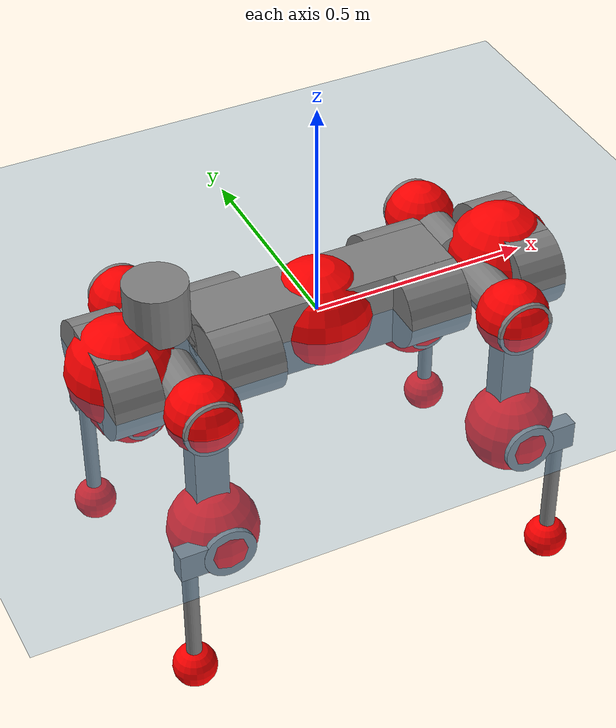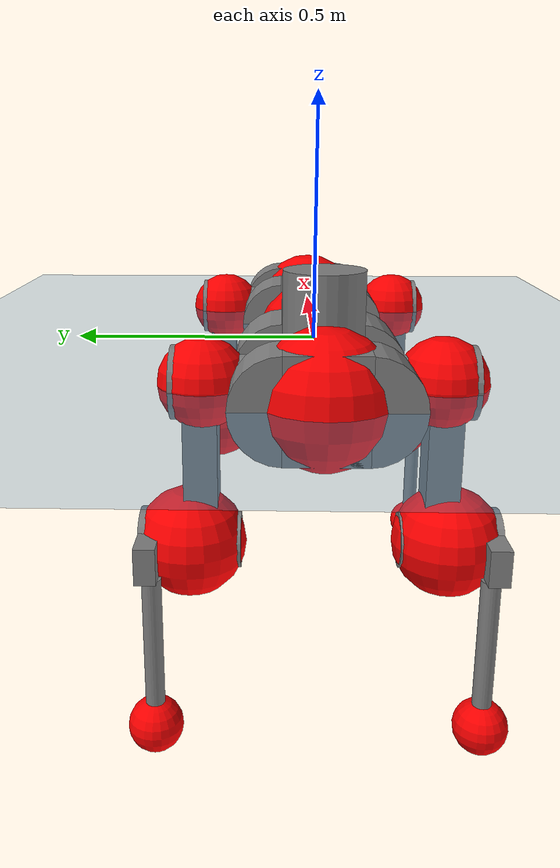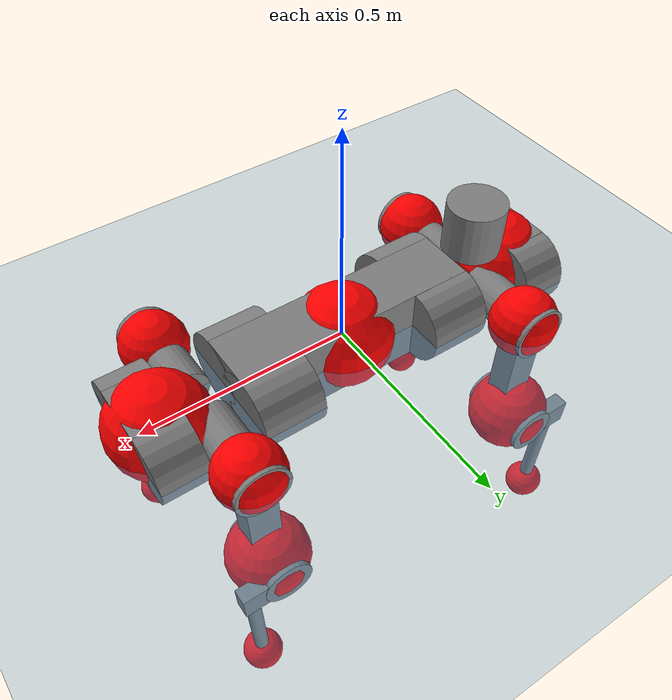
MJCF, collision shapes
<mujoco model="anymal_c">
  <compiler angle="radian" assetdir="assets" balanceinertia="true" inertiafromgeom="false"/>

  <option timestep="0.005" density="1.2" viscosity="2e-05"/>

  <size nkey="1"/>

  <visual>
    <quality shadowsize="8192"/>
    <map shadowclip="0.5"/>
  </visual>

  <default>
    <default class="/">
      <material specular="0" shininess="0.25"/>
      <geom contype="0" conaffinity="0" group="1" solref="-1000 -80"/>
      <site size="0.01 0.005 0.005" group="5"/>
      <general forcelimited="true" forcerange="-80 80" biastype="affine" gainprm="80" biasprm="0 -80 -2"/>
      <default class="anymal_c">
        <joint armature="0.01" damping="0.01" frictionloss="0.1"/>
        <default class="visual">
          <geom type="mesh" group="2"/>
          <default class="visual_zflip"/>
        </default>
        <default class="collision">
          <geom type="cylinder" group="3"/>
          <default class="foot">
            <geom size="0.03 0 0" type="sphere" condim="6" priority="1" friction="0.8 0.02 0.01" solimp="0.015 1 0.03"/>
          </default>
        </default>
      </default>
      <default class="reward_collision_sphere">
        <geom group="5" rgba="1 0 0 1"/>
      </default>
    </default>
  </default>

  <asset>
    <texture type="skybox" colorspace="auto" name="//unnamed_texture_0" builtin="gradient" rgb1="0.95 0.95 0.95" rgb2="0.95 0.95 0.95" width="100" height="600"/>
    <texture type="2d" colorspace="auto" name="texplane" builtin="checker" rgb1="0.345 0.575 0.748" rgb2="0.345 0.575 0.748" markrgb="1 1 1" width="512" height="512"/>
    <texture type="2d" colorspace="linear" name="base" file="base.png"/>
    <texture type="2d" colorspace="linear" name="top_shell" file="top_shell.png"/>
    <texture type="2d" colorspace="linear" name="bottom_shell" file="bottom_shell.png"/>
    <texture type="2d" colorspace="linear" name="remote" file="remote.png"/>
    <texture type="2d" colorspace="linear" name="hatch" file="hatch.png"/>
    <texture type="2d" colorspace="linear" name="handle" file="handle.png"/>
    <texture type="2d" colorspace="linear" name="face" file="face.png"/>
    <texture type="2d" colorspace="linear" name="battery" file="battery.png"/>
    <texture type="2d" colorspace="linear" name="lidar_cage" file="lidar_cage.png"/>
    <texture type="2d" colorspace="linear" name="depth_camera" file="depth_camera.png"/>
    <texture type="2d" colorspace="linear" name="wide_angle_camera" file="wide_angle_camera.png"/>
    <texture type="2d" colorspace="linear" name="lidar" file="lidar.png"/>
    <texture type="2d" colorspace="linear" name="drive" file="drive.png"/>
    <texture type="2d" colorspace="linear" name="hip_l" file="hip_l.png"/>
    <texture type="2d" colorspace="linear" name="shank_l" file="shank_l.png"/>
    <texture type="2d" colorspace="linear" name="foot" file="foot.png"/>
    <texture type="2d" colorspace="linear" name="thigh" file="thigh.png"/>
    <texture type="2d" colorspace="linear" name="shank_r" file="shank_r.png"/>
    <texture type="2d" colorspace="linear" name="hip_r" file="hip_r.png"/>
    <material name="MatPlane" class="/" texture="texplane" texuniform="true" texrepeat="2 2" specular="0.9" shininess="0.5"/>
    <material name="black_plastic" class="/" rgba="0.007 0.007 0.007 1"/>
    <material name="green" class="/" rgba="0.052 0.178 0.033 1"/>
    <material name="red" class="/" rgba="0.178 0.006 0.005 1"/>
    <material name="yellow" class="/" rgba="0.178 0.119 0.006 1"/>
    <material name="lwl" class="/" rgba="0.8 0.8 0.8 1"/>
    <material name="base" class="/" texture="base"/>
    <material name="top_shell" class="/" texture="top_shell"/>
    <material name="bottom_shell" class="/" texture="bottom_shell"/>
    <material name="hip_l" class="/" texture="hip_l"/>
    <material name="thigh" class="/" texture="thigh"/>
    <material name="shank_l" class="/" texture="shank_l"/>
    <material name="foot" class="/" texture="foot"/>
    <material name="hip_r" class="/" texture="hip_r"/>
    <material name="shank" class="/" texture="shank_r"/>
    <material name="hatch" class="/" texture="hatch"/>
    <material name="remote" class="/" texture="remote"/>
    <material name="handle" class="/" texture="handle"/>
    <material name="face" class="/" texture="face"/>
    <material name="depth_camera" class="/" texture="depth_camera"/>
    <material name="wide_angle_camera" class="/" texture="wide_angle_camera"/>
    <material name="battery" class="/" texture="battery"/>
    <material name="lidar_cage" class="/" texture="lidar_cage"/>
    <material name="lidar" class="/" texture="lidar"/>
    <material name="drive" class="/" texture="drive"/>
    <mesh name="base_0" class="/" file="base_0.obj"/>
    <mesh name="base_1" class="/" file="base_1.obj"/>
    <mesh name="base_2" class="/" file="base_2.obj"/>
    <mesh name="base_3" class="/" file="base_3.obj"/>
    <mesh name="base_4" class="/" file="base_4.obj"/>
    <mesh name="base_5" class="/" file="base_5.obj"/>
    <mesh name="top_shell" class="/" file="top_shell.obj"/>
    <mesh name="bottom_shell" class="/" file="bottom_shell.obj"/>
    <mesh name="remote" class="/" file="remote.obj"/>
    <mesh name="handle" class="/" file="handle.obj"/>
    <mesh name="face" class="/" file="face.obj"/>
    <mesh name="wide_angle_camera" class="/" file="wide_angle_camera.obj"/>
    <mesh name="depth_camera" class="/" file="depth_camera.obj"/>
    <mesh name="battery" class="/" file="battery.obj"/>
    <mesh name="lidar_cage" class="/" file="lidar_cage.obj"/>
    <mesh name="lidar" class="/" file="lidar.obj"/>
    <mesh name="drive" class="/" file="drive.obj"/>
    <mesh name="hip_l" class="/" file="hip_l.obj"/>
    <mesh name="thigh" class="/" file="thigh.obj"/>
    <mesh name="shank_l" class="/" file="shank_l.obj"/>
    <mesh name="foot" class="/" file="foot.obj"/>
    <mesh name="hip_r" class="/" file="hip_r.obj"/>
    <mesh name="hatch" class="/" file="hatch.obj"/>
    <mesh name="shank_r" class="/" file="shank_r.obj"/>
  </asset>

  <worldbody>
    <geom name="floor" class="/" size="100 100 0.125" type="plane" group="0" material="MatPlane"/>
    <light name="toplight_shadow" class="/" pos="0 0 5" dir="0.0990148 0.0990148 -0.990148" type="directional" ambient="0.04 0.04 0.04" diffuse="0.55 0.55 0.55" specular="0.12 0.12 0.12"/>
    <light name="toplight_fill" class="/" pos="0 0 5" dir="0.0990148 0.0990148 -0.990148" type="directional" castshadow="false" ambient="0.04 0.04 0.04" diffuse="0.3 0.3 0.3" specular="0.08 0.08 0.08"/>
    <body name="trunk" childclass="anymal_c" pos="0.000533413 0.000200555 -0.00172945" quat="1 -0.000233246 0.0001021 0.000639554">
      <inertial pos="0.00241484 0.000369606 0.052771" quat="0.498474 0.497154 0.505178 0.499156" mass="19.5335" diaginertia="0.67105 0.508137 0.265083"/>
      <joint name="//unnamed_joint_0" type="free" armature="0" damping="0" frictionloss="0"/>
      <geom name="//unnamed_geom_1" class="visual" material="green" mesh="base_0"/>
      <geom name="//unnamed_geom_2" class="visual" material="yellow" mesh="base_1"/>
      <geom name="//unnamed_geom_3" class="visual" material="red" mesh="base_2"/>
      <geom name="//unnamed_geom_4" class="visual" material="black_plastic" mesh="base_3"/>
      <geom name="//unnamed_geom_5" class="visual" material="lwl" mesh="base_4"/>
      <geom name="//unnamed_geom_6" class="visual" material="base" mesh="base_5"/>
      <geom name="trunk_1" class="collision" size="0.289888 0.069973 0.0899652" type="box"/>
      <geom name="trunk_2" class="collision" size="0.0899652 0.072472" pos="0.218908 0.0669145 0" quat="0.707107 0 0.707107 0"/>
      <geom name="trunk_3" class="collision" size="0.0899652 0.072472" pos="-0.218908 0.0669145 0" quat="0.707107 0 0.707107 0"/>
      <geom name="trunk_4" class="collision" size="0.0899652 0.072472" pos="0.218908 -0.0669145 0" quat="0.707107 0 0.707107 0"/>
      <geom name="trunk_5" class="collision" size="0.0899652 0.072472" pos="-0.218908 -0.0669145 0" quat="0.707107 0 0.707107 0"/>
      <geom name="//unnamed_geom_12" class="visual" material="top_shell" mesh="top_shell"/>
      <geom name="//unnamed_geom_13" class="visual" material="bottom_shell" mesh="bottom_shell"/>
      <geom name="//unnamed_geom_14" class="visual" material="remote" mesh="remote"/>
      <geom name="//unnamed_geom_15" class="visual" material="handle" mesh="handle"/>
      <geom name="//unnamed_geom_16" class="visual" pos="0.417184 0 0" quat="1 0 0 0" material="face" mesh="face"/>
      <geom name="trunk_6" class="collision" size="0.0549788 0.069973 0.0899652" pos="0.47254 0 0" type="box"/>
      <geom name="//unnamed_geom_18" class="collision" size="0.0899652 0.0549788" pos="0.47254 0.0669145 0" quat="0.707107 0 0.707107 0"/>
      <geom name="//unnamed_geom_19" class="collision" size="0.0899652 0.0549788" pos="0.47254 -0.0669145 0" quat="0.707107 0 0.707107 0"/>
      <geom name="//unnamed_geom_20" class="visual" pos="0.46464 0 -0.0304919" quat="0.965926 0 0.258819 0" material="depth_camera" mesh="depth_camera"/>
      <geom name="//unnamed_geom_21" class="visual" pos="0.516322 0 0.0155156" material="wide_angle_camera" mesh="wide_angle_camera"/>
      <geom name="//unnamed_geom_22" class="visual_zflip" pos="-0.417184 0 0" quat="0 0 0 1" material="face" mesh="face"/>
      <geom name="trunk_7" class="collision" size="0.0549788 0.069973 0.0899652" pos="-0.47254 0 0" quat="0 0 0 1" type="box"/>
      <geom name="//unnamed_geom_24" class="collision" size="0.0899652 0.0549788" pos="-0.47254 -0.0669145 0" quat="0 -0.707107 0 0.707107"/>
      <geom name="//unnamed_geom_25" class="collision" size="0.0899652 0.0549788" pos="-0.47254 0.0669145 0" quat="0 -0.707107 0 0.707107"/>
      <geom name="//unnamed_geom_26" class="visual" pos="-0.46464 0 -0.0304919" quat="0 -0.258819 0 0.965926" material="depth_camera" mesh="depth_camera"/>
      <geom name="//unnamed_geom_27" class="visual_zflip" pos="-0.516322 0 0.0155156" quat="0 0 0 1" material="wide_angle_camera" mesh="wide_angle_camera"/>
      <geom name="//unnamed_geom_28" class="visual" material="battery" mesh="battery"/>
      <geom name="//unnamed_geom_29" class="visual" pos="0 0.0724277 0.0298809" quat="0.683013 -0.183013 0.183013 0.683013" material="depth_camera" mesh="depth_camera"/>
      <geom name="//unnamed_geom_30" class="visual" pos="0 -0.0724277 0.0298809" quat="0.683013 0.183013 0.183013 -0.683013" material="depth_camera" mesh="depth_camera"/>
      <geom name="//unnamed_geom_31" class="visual" pos="-0.366357 0 0.0761786" quat="1 0 0 0" material="lidar_cage" mesh="lidar_cage"/>
      <geom name="trunk_8" class="collision" size="0.069973 0.0599768" pos="-0.366357 0 0.138365"/>
      <geom name="//unnamed_geom_33" class="visual" pos="-0.366357 -1.9861e-05 0.147382" quat="0.707107 0 0 -0.707107" material="lidar" mesh="lidar"/>
      <geom name="//unnamed_geom_34" class="visual" pos="0.301842 0.0994445 -1.38902e-09" quat="0.258819 0.965926 0 0" material="drive" mesh="drive"/>
      <geom name="//unnamed_geom_35" class="visual" pos="0.301842 -0.0994445 1.38902e-09" quat="0.258819 -0.965926 0 0" material="drive" mesh="drive"/>
      <geom name="//unnamed_geom_36" class="visual" pos="-0.301842 0.0994445 1.38902e-09" quat="0 0 0.965926 -0.258819" material="drive" mesh="drive"/>
      <geom name="//unnamed_geom_37" class="visual" pos="-0.301842 -0.0994445 -1.38902e-09" quat="0 0 -0.965926 -0.258819" material="drive" mesh="drive"/>
      <geom name="//unnamed_geom_38" class="visual" pos="0.116751 0 0.0756604" quat="1 0 0 0" material="hatch" mesh="hatch"/>
      <geom name="//unnamed_geom_39" class="reward_collision_sphere" size="0.119954"/>
      <geom name="//unnamed_geom_40" class="reward_collision_sphere" size="0.119954" pos="0.452914 0 0"/>
      <geom name="//unnamed_geom_41" class="reward_collision_sphere" size="0.119954" pos="-0.452914 0 0"/>
      <site name="imu" pos="0.251585 0.00452848 0.0462709" size="0.00999614"/>
      <camera name="track" pos="0 -1.91184 0" quat="0.707107 0.707107 0 0" mode="trackcom"/>
      <camera name="ego_camera" pos="0.452914 0 -0.0414578" quat="-0.5 -0.5 0.5 0.5"/>
      <body name="LF_HIP" pos="0.30218 0.0987998 0.00037084" quat="0.258844 0.965919 0.000110889 -1.80939e-05">
        <inertial pos="0.0559169 -0.0143723 -0.0101284" quat="-0.120204 0.708729 -0.135722 0.681787" mass="2.80539" diaginertia="0.00610958 0.00398712 0.00397649"/>
        <joint name="LF_HAA" pos="0 0 0" axis="0.999999 0.000322032 0.00120033" range="-0.716998 0.472086" armature="0.00997487" damping="0.0100142" frictionloss="0.095618"/>
        <geom name="//unnamed_geom_42" class="visual" pos="0 -8.17096e-05 1.34207e-05" quat="0.258819 -0.965926 0 0" material="hip_l" mesh="hip_l"/>
        <geom name="//unnamed_geom_43" class="visual" pos="0.0602879 -0.0724146 -0.0424042" quat="0.183013 -0.683013 0.683013 0.183013" material="drive" mesh="drive"/>
        <geom name="//unnamed_geom_44" class="collision" size="0.0499807 0.069973" pos="0.0602879 -0.0114326 -0.00715665" quat="-0.353553 -0.612372 0.612372 -0.353553"/>
        <body name="LF_THIGH" pos="0.0602742 -0.0703527 -0.0428637" quat="0.183013 -0.682968 0.683085 0.182908">
          <inertial pos="0.0311178 -2.77036e-05 -0.254469" quat="0.993222 -0.00200413 -0.0795114 0.0847578" mass="3.0279" diaginertia="0.0309244 0.0235646 0.00491442"/>
          <joint name="LF_HFE" pos="0 0 0" axis="1 0.000605819 0.000199892" stiffness="0.00374889" range="-3.1286 3.13894" armature="0.00999249" damping="0.00784364" frictionloss="0.100052"/>
          <geom name="//unnamed_geom_45" class="visual" pos="0.00100581 1.58492e-06 0" quat="0.707107 0 0 -0.707107" material="thigh" mesh="thigh"/>
          <geom name="//unnamed_geom_46" class="collision" size="0.0649749 0.0399845" pos="0.040259 0 0" quat="0.5 0.5 -0.5 -0.5"/>
          <geom name="//unnamed_geom_47" class="collision" size="0.0374855 0.0299884 0.141259" pos="0.0301943 0 -0.146464" quat="0.707107 0 0 -0.707107" type="box"/>
          <geom name="//unnamed_geom_48" class="visual" pos="0.100949 0 -0.295387" quat="1 0 0 0" material="drive" mesh="drive"/>
          <geom name="//unnamed_geom_49" class="collision" size="0.0499807 0.069973" pos="0.0304962 0 -0.295387" quat="0.707107 0 0.707107 0"/>
          <geom name="//unnamed_geom_50" class="reward_collision_sphere" size="0.0799691" pos="0.0251619 0 0"/>
          <body name="LF_SHANK" pos="0.100601 -0.000848221 -0.295575" quat="1 -2.22236e-05 -4.54762e-05 1.06226e-05">
            <inertial pos="0.00342629 -0.0600118 -0.083776" quat="0.992954 -0.115712 -0.000495653 -0.0255606" mass="0.589952" diaginertia="0.0103629 0.00743985 0.00134007"/>
            <joint name="LF_KFE" pos="0 0 0" axis="0.999998 -0.0020092 0.00014157" range="-3.17998 3.12495" armature="0.00999421" damping="0.00904055" frictionloss="0.10917"/>
            <geom name="//unnamed_geom_51" class="visual" pos="0.000327973 0.00174877 0" quat="0.707107 0 0 -0.707107" material="shank_l" mesh="shank_l"/>
            <geom name="LF_kfe_act" class="collision" size="0.0599768 0.0199923" pos="0.0201295 0 0" quat="0.5 0.5 -0.5 -0.5"/>
            <geom name="//unnamed_geom_53" class="collision" size="0.0574768 0.033737 0.0189927" pos="0.0201295 -0.0549646 0" quat="0.5 0.5 -0.5 -0.5" type="box"/>
            <geom name="//unnamed_geom_54" class="visual" pos="0.0131344 -0.0835098 -0.350287" quat="0.382683 0 0 -0.92388" material="foot" mesh="foot"/>
            <geom name="LF_calf" class="collision" size="0.0174932 0.141197" pos="0.0131345 -0.0840733 -0.175144" quat="0.707107 0 0 -0.707107"/>
            <geom name="LF_foot" class="foot" size="0.0297549" pos="0.0131345 -0.0840733 -0.326967" quat="0.707107 0 0 -0.707107"/>
            <geom name="//unnamed_geom_57" class="reward_collision_sphere" size="0.0999614" pos="-0.0503238 0 0"/>
            <geom name="//unnamed_geom_58" class="reward_collision_sphere" size="0.0499807" pos="0.0131345 -0.0840733 -0.326967"/>
            <site name="LF_foot" class="foot" pos="0.0131345 -0.0840733 -0.326967" quat="0.707107 0 0 -0.707107" size="0.00999614"/>
          </body>
        </body>
      </body>
      <body name="RF_HIP" pos="0.303184 -0.100364 8.26228e-05" quat="0.259137 -0.96584 -0.000594647 -0.00055268">
        <inertial pos="0.058102 0.0150416 -0.0088924" quat="0.133983 0.673898 0.123779 0.715953" mass="2.86246" diaginertia="0.0061253 0.00397439 0.00399246"/>
        <joint name="RF_HAA" pos="0 0 0" axis="0.999985 0.00341696 0.00421735" range="-0.527253 0.738726" armature="0.00987377" damping="0.0141061" frictionloss="0.0978762"/>
        <geom name="//unnamed_geom_59" class="visual" pos="0 8.1709e-05 1.34207e-05" quat="0.258819 0.965926 0 0" material="hip_r" mesh="hip_r"/>
        <geom name="//unnamed_geom_60" class="visual" pos="0.0602879 0.0724146 -0.0424042" quat="0.183013 0.683013 0.683013 -0.183013" material="drive" mesh="drive"/>
        <geom name="//unnamed_geom_61" class="collision" size="0.0499807 0.069973" pos="0.0602879 0.0114326 -0.00715665" quat="-0.353553 0.612372 0.612372 0.353553"/>
        <body name="RF_THIGH" pos="0.0602204 0.0698023 -0.0430816" quat="0.182898 0.683207 0.682966 -0.182576">
          <inertial pos="0.0320624 -6.0371e-05 -0.254054" quat="0.992516 -0.00493513 -0.0814709 0.0908356" mass="3.08168" diaginertia="0.0311991 0.02374 0.0049502"/>
          <joint name="RF_HFE" pos="0 0 0" axis="1 -0.000249826 0.0001656" stiffness="0.00547838" range="-3.14286 3.15375" armature="0.0105246" damping="0" frictionloss="0.0979647"/>
          <geom name="//unnamed_geom_62" class="visual" pos="0.00100581 1.58492e-06 0" quat="0.707107 0 0 -0.707107" material="thigh" mesh="thigh"/>
          <geom name="//unnamed_geom_63" class="collision" size="0.0649749 0.0399845" pos="0.040259 0 0" quat="0.5 0.5 0.5 0.5"/>
          <geom name="//unnamed_geom_64" class="collision" size="0.0374855 0.0299884 0.141259" pos="0.0301943 0 -0.146464" quat="0.707107 0 0 0.707107" type="box"/>
          <geom name="//unnamed_geom_65" class="visual" pos="0.100949 0 -0.295387" quat="1 0 0 0" material="drive" mesh="drive"/>
          <geom name="//unnamed_geom_66" class="collision" size="0.0499807 0.069973" pos="0.0304962 0 -0.295387" quat="0.707107 0 0.707107 0"/>
          <geom name="//unnamed_geom_67" class="reward_collision_sphere" size="0.0799691" pos="0.0251619 0 0"/>
          <body name="RF_SHANK" pos="0.0990655 0.000199257 -0.295424" quat="1 -3.82998e-05 6.563e-06 -4.01213e-05">
            <inertial pos="0.00577887 0.0573678 -0.0829632" quat="0.991791 0.125446 -0.00182361 0.0246985" mass="0.575062" diaginertia="0.0103165 0.00734383 0.00132489"/>
            <joint name="RF_KFE" pos="0 0 0" axis="0.999992 -0.000716003 0.00384613" stiffness="0.00178243" range="-3.13961 3.12651" armature="0.00988249" damping="0.0050393" frictionloss="0.104685"/>
            <geom name="//unnamed_geom_68" class="visual" pos="0.000327971 -0.00174876 0" quat="0.707107 0 0 0.707107" material="shank" mesh="shank_r"/>
            <geom name="RF_kfe_act" class="collision" size="0.0599768 0.0199923" pos="0.0201295 0 0" quat="0.5 0.5 0.5 0.5"/>
            <geom name="//unnamed_geom_70" class="collision" size="0.0574768 0.033737 0.0189927" pos="0.0201295 0.0549646 0" quat="0.5 0.5 0.5 0.5" type="box"/>
            <geom name="//unnamed_geom_71" class="visual" pos="0.0131346 0.0835098 -0.350287" quat="0.382683 0 0 0.92388" material="foot" mesh="foot"/>
            <geom name="RF_calf" class="collision" size="0.0174932 0.141197" pos="0.0131345 0.0840733 -0.175144" quat="0.707107 0 0 0.707107"/>
            <geom name="RF_foot" class="foot" size="0.0291677" pos="0.0131345 0.0840733 -0.326967" quat="0.707107 0 0 0.707107"/>
            <geom name="//unnamed_geom_74" class="reward_collision_sphere" size="0.0999614" pos="-0.0503238 0 0"/>
            <geom name="//unnamed_geom_75" class="reward_collision_sphere" size="0.0499807" pos="0.0131345 0.0840733 -0.326967"/>
            <site name="RF_foot" class="foot" pos="0.0131345 0.0840733 -0.326967" quat="0.707107 0 0 0.707107" size="0.00999614"/>
          </body>
        </body>
      </body>
      <body name="LH_HIP" pos="-0.301654 0.0997089 0.000882063" quat="0.000316986 -0.000284549 0.965938 -0.258773">
        <inertial pos="0.0577531 0.0131288 -0.0104652" quat="0.137022 0.676332 0.12581 0.712722" mass="2.78403" diaginertia="0.00617722 0.00391418 0.00395636"/>
        <joint name="LH_HAA" pos="0 0 0" axis="0.999977 0.00600881 -0.00318334" range="-0.514659 0.749627" armature="0.010396" damping="0.00950979" frictionloss="0.0997009"/>
        <geom name="//unnamed_geom_76" class="visual" pos="0 8.1709e-05 1.34207e-05" quat="-0.258819 -0.965926 0 0" material="hip_r" mesh="hip_r"/>
        <geom name="//unnamed_geom_77" class="visual" pos="0.0602879 0.0724146 -0.0424042" quat="0.183013 0.683013 0.683013 -0.183013" material="drive" mesh="drive"/>
        <geom name="//unnamed_geom_78" class="collision" size="0.0499807 0.069973" pos="0.0602879 0.0114326 -0.00715665" quat="-0.353553 0.612372 0.612372 0.353553"/>
        <body name="LH_THIGH" pos="0.0600926 0.0685525 -0.0417227" quat="0.182951 0.683089 0.6829 -0.183212">
          <inertial pos="0.0330353 -0.000204929 -0.256304" quat="0.99277 -0.00515775 -0.0806123 0.0887884" mass="3.14902" diaginertia="0.0325978 0.0246248 0.00511952"/>
          <joint name="LH_HFE" pos="0 0 0" axis="0.999957 0.00808318 -0.00457696" range="-3.13488 3.13713" armature="0.0099484" damping="0" frictionloss="0.0950631"/>
          <geom name="//unnamed_geom_79" class="visual" pos="0.00100581 1.58492e-06 0" quat="0.707107 0 0 -0.707107" material="thigh" mesh="thigh"/>
          <geom name="//unnamed_geom_80" class="collision" size="0.0649749 0.0399845" pos="0.040259 0 0" quat="0.5 0.5 -0.5 -0.5"/>
          <geom name="//unnamed_geom_81" class="collision" size="0.0374855 0.0299884 0.141259" pos="0.0301943 0 -0.146464" quat="0.707107 0 0 -0.707107" type="box"/>
          <geom name="//unnamed_geom_82" class="visual" pos="0.100949 0 -0.295387" quat="1 0 0 0" material="drive" mesh="drive"/>
          <geom name="//unnamed_geom_83" class="collision" size="0.0499807 0.069973" pos="0.0304962 0 -0.295387" quat="0.707107 0 0.707107 0"/>
          <geom name="//unnamed_geom_84" class="reward_collision_sphere" size="0.0799691" pos="0.0251619 0 0"/>
          <body name="LH_SHANK" pos="0.101315 -0.000118747 -0.296683" quat="1 7.8215e-06 0.000371239 5.81092e-05">
            <inertial pos="0.0038634 0.058107 -0.0854525" quat="0.993113 0.113536 -0.00573295 0.0283351" mass="0.587627" diaginertia="0.0104875 0.00746314 0.00132319"/>
            <joint name="LH_KFE" pos="0 0 0" axis="1 -5.2597e-05 0.000705238" range="-3.13481 3.09991" armature="0.0105943" damping="0" frictionloss="0.0994793"/>
            <geom name="//unnamed_geom_85" class="visual" pos="0.000327971 -0.00174876 0" quat="-0.707107 0 0 -0.707107" material="shank" mesh="shank_r"/>
            <geom name="LH_kfe_act" class="collision" size="0.0599768 0.0199923" pos="0.0201295 0 0" quat="0.5 0.5 -0.5 -0.5"/>
            <geom name="//unnamed_geom_87" class="collision" size="0.0574768 0.033737 0.0189927" pos="0.0201295 0.0549646 0" quat="0.5 0.5 -0.5 -0.5" type="box"/>
            <geom name="//unnamed_geom_88" class="visual" pos="0.0131346 0.0835098 -0.350287" quat="-0.382683 0 0 -0.92388" material="foot" mesh="foot"/>
            <geom name="LH_calf" class="collision" size="0.0174932 0.141197" pos="0.0131345 0.0840733 -0.175144" quat="0.707107 0 0 -0.707107"/>
            <geom name="LH_foot" class="foot" size="0.0301664" pos="0.0131345 0.0840733 -0.326967" quat="0.707107 0 0 -0.707107"/>
            <geom name="//unnamed_geom_91" class="reward_collision_sphere" size="0.0999614" pos="-0.0503238 0 0"/>
            <geom name="//unnamed_geom_92" class="reward_collision_sphere" size="0.0499807" pos="0.0131345 0.0840733 -0.326967"/>
            <site name="LH_foot" class="foot" pos="0.0131345 0.0840733 -0.326967" quat="0.707107 0 0 -0.707107" size="0.00999614"/>
          </body>
        </body>
      </body>
      <body name="RH_HIP" pos="-0.299789 -0.0992311 0.00115307" quat="4.71945e-06 5.98345e-05 -0.965937 -0.258776">
        <inertial pos="0.0565238 -0.0141114 -0.00872774" quat="-0.123127 0.708383 -0.132651 0.68223" mass="2.76442" diaginertia="0.0062948 0.00399472 0.00397756"/>
        <joint name="RH_HAA" pos="0 0 0" axis="0.999935 0.00827022 -0.00782276" range="-0.703327 0.493993" armature="0.00994705" damping="0.0103063" frictionloss="0.109853"/>
        <geom name="//unnamed_geom_93" class="visual" pos="0 -8.17096e-05 1.34207e-05" quat="-0.258819 0.965926 0 0" material="hip_l" mesh="hip_l"/>
        <geom name="//unnamed_geom_94" class="visual" pos="0.0602879 -0.0724146 -0.0424042" quat="-0.183013 0.683013 -0.683013 -0.183013" material="drive" mesh="drive"/>
        <geom name="//unnamed_geom_95" class="collision" size="0.0499807 0.069973" pos="0.0602879 -0.0114326 -0.00715665" quat="0.353553 0.612372 -0.612372 0.353553"/>
        <body name="RH_THIGH" pos="0.0597281 -0.0694145 -0.0432806" quat="-0.183145 0.682992 -0.68296 -0.183156">
          <inertial pos="0.0301986 0.00083938 -0.255468" quat="0.99306 -0.00568232 -0.0822594 0.0838663" mass="3.01807" diaginertia="0.031833 0.0240644 0.00503794"/>
          <joint name="RH_HFE" pos="0 0 0" axis="0.999991 -0.0036032 -0.00217609" range="-3.14595 3.13914" armature="0.0101143" damping="0.0140192" frictionloss="0.101739"/>
          <geom name="//unnamed_geom_96" class="visual" pos="0.00100581 1.58492e-06 0" quat="0.707107 0 0 -0.707107" material="thigh" mesh="thigh"/>
          <geom name="//unnamed_geom_97" class="collision" size="0.0649749 0.0399845" pos="0.040259 0 0" quat="0.5 0.5 0.5 0.5"/>
          <geom name="//unnamed_geom_98" class="collision" size="0.0374855 0.0299884 0.141259" pos="0.0301943 0 -0.146464" quat="0.707107 0 0 0.707107" type="box"/>
          <geom name="//unnamed_geom_99" class="visual" pos="0.100949 0 -0.295387" quat="1 0 0 0" material="drive" mesh="drive"/>
          <geom name="//unnamed_geom_100" class="collision" size="0.0499807 0.069973" pos="0.0304962 0 -0.295387" quat="0.707107 0 0.707107 0"/>
          <geom name="//unnamed_geom_101" class="reward_collision_sphere" size="0.0799691" pos="0.0251619 0 0"/>
          <body name="RH_SHANK" pos="0.0990172 0.000525001 -0.29579" quat="1 -8.93795e-05 7.48481e-05 0.00096544">
            <inertial pos="0.00478706 -0.0585346 -0.0837705" quat="0.99248 -0.119381 -0.00625076 -0.0263006" mass="0.581809" diaginertia="0.0103632 0.00723936 0.00130534"/>
            <joint name="RH_KFE" pos="0 0 0" axis="0.999915 -0.000159691 -0.0130612" range="-3.10324 3.13969" armature="0.0100297" damping="0" frictionloss="0.102087"/>
            <geom name="//unnamed_geom_102" class="visual" pos="0.000327973 0.00174877 0" quat="0.707107 0 0 -0.707107" material="shank_l" mesh="shank_l"/>
            <geom name="RH_kfe_act" class="collision" size="0.0599768 0.0199923" pos="0.0201295 0 0" quat="0.5 0.5 0.5 0.5"/>
            <geom name="//unnamed_geom_104" class="collision" size="0.0574768 0.033737 0.0189927" pos="0.0201295 -0.0549646 0" quat="0.5 0.5 0.5 0.5" type="box"/>
            <geom name="//unnamed_geom_105" class="visual" pos="0.0131344 -0.0835098 -0.350287" quat="0.382683 0 0 -0.92388" material="foot" mesh="foot"/>
            <geom name="RH_calf" class="collision" size="0.0174932 0.141197" pos="0.0131345 -0.0840733 -0.175144" quat="0.707107 0 0 0.707107"/>
            <geom name="RH_foot" class="foot" size="0.0303844" pos="0.0131345 -0.0840733 -0.326967" quat="0.707107 0 0 0.707107"/>
            <geom name="//unnamed_geom_108" class="reward_collision_sphere" size="0.0999614" pos="-0.0503238 0 0"/>
            <geom name="//unnamed_geom_109" class="reward_collision_sphere" size="0.0499807" pos="0.0131345 -0.0840733 -0.326967"/>
            <site name="RH_foot" class="foot" pos="0.0131345 -0.0840733 -0.326967" quat="0.707107 0 0 0.707107" size="0.00999614"/>
          </body>
        </body>
      </body>
    </body>
  </worldbody>

  <contact>
    <pair class="/" geom1="floor" geom2="LF_foot" name="//unnamed_contact_0"/>
    <pair class="/" geom1="floor" geom2="RF_foot" name="//unnamed_contact_1"/>
    <pair class="/" geom1="floor" geom2="LH_foot" name="//unnamed_contact_2"/>
    <pair class="/" geom1="floor" geom2="RH_foot" name="//unnamed_contact_3"/>
  </contact>

  <actuator>
    <general name="LF_HAA" class="/" joint="LF_HAA" forcerange="-80.4753 80.4753" gainprm="81.4739" biasprm="0 -81.4739 -1.97844"/>
    <general name="LF_HFE" class="/" joint="LF_HFE" forcerange="-80.2341 80.2341" gainprm="81.4739" biasprm="0 -81.4739 -1.97844"/>
    <general name="LF_KFE" class="/" joint="LF_KFE" forcerange="-78.3088 78.3088" gainprm="81.4739" biasprm="0 -81.4739 -1.97844"/>
    <general name="RF_HAA" class="/" joint="RF_HAA" forcerange="-79.0958 79.0958" gainprm="81.4739" biasprm="0 -81.4739 -1.97844"/>
    <general name="RF_HFE" class="/" joint="RF_HFE" forcerange="-78.9924 78.9924" gainprm="81.4739" biasprm="0 -81.4739 -1.97844"/>
    <general name="RF_KFE" class="/" joint="RF_KFE" forcerange="-80.2507 80.2507" gainprm="81.4739" biasprm="0 -81.4739 -1.97844"/>
    <general name="LH_HAA" class="/" joint="LH_HAA" forcerange="-80.7755 80.7755" gainprm="81.4739" biasprm="0 -81.4739 -1.97844"/>
    <general name="LH_HFE" class="/" joint="LH_HFE" forcerange="-75.5666 75.5666" gainprm="81.4739" biasprm="0 -81.4739 -1.97844"/>
    <general name="LH_KFE" class="/" joint="LH_KFE" forcerange="-84.6652 84.6652" gainprm="81.4739" biasprm="0 -81.4739 -1.97844"/>
    <general name="RH_HAA" class="/" joint="RH_HAA" forcerange="-80.4632 80.4632" gainprm="81.4739" biasprm="0 -81.4739 -1.97844"/>
    <general name="RH_HFE" class="/" joint="RH_HFE" forcerange="-82.4755 82.4755" gainprm="81.4739" biasprm="0 -81.4739 -1.97844"/>
    <general name="RH_KFE" class="/" joint="RH_KFE" forcerange="-78.2233 78.2233" gainprm="81.4739" biasprm="0 -81.4739 -1.97844"/>
  </actuator>

  <sensor>
    <gyro site="imu" name="imu_angular_velocity"/>
    <velocimeter site="imu" name="imu_linear_velocity"/>
    <framelinvel objtype="site" objname="LF_foot" name="LF_foot_global_linear_velocity"/>
    <framelinvel objtype="site" objname="RF_foot" name="RF_foot_global_linear_velocity"/>
    <framelinvel objtype="site" objname="LH_foot" name="LH_foot_global_linear_velocity"/>
    <framelinvel objtype="site" objname="RH_foot" name="RH_foot_global_linear_velocity"/>
  </sensor>

  <keyframe>
    <key name="home" qpos="0 0 0.55 1 0 0 0 0 0.4 -0.8 0 -0.4 0.8 0 -0.4 0.8 0 0.4 -0.8"/>
  </keyframe>
</mujoco>
